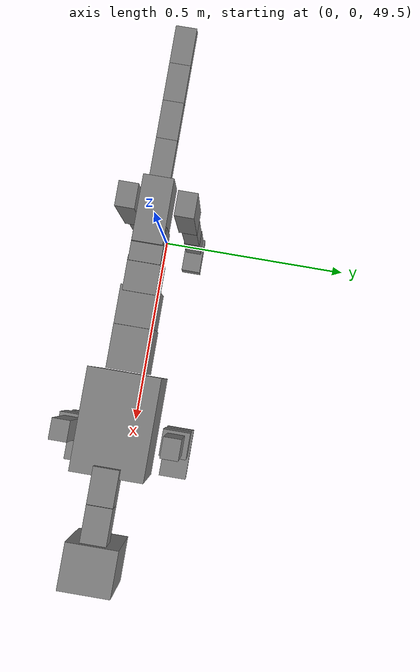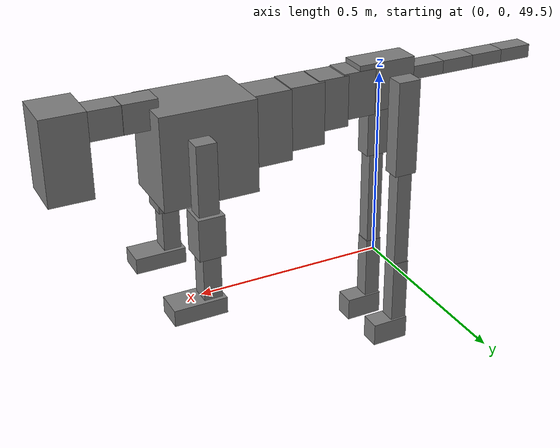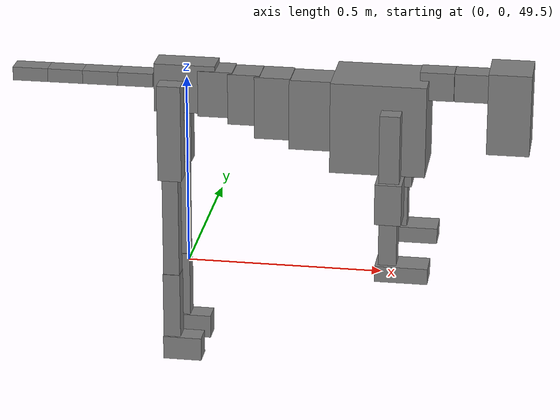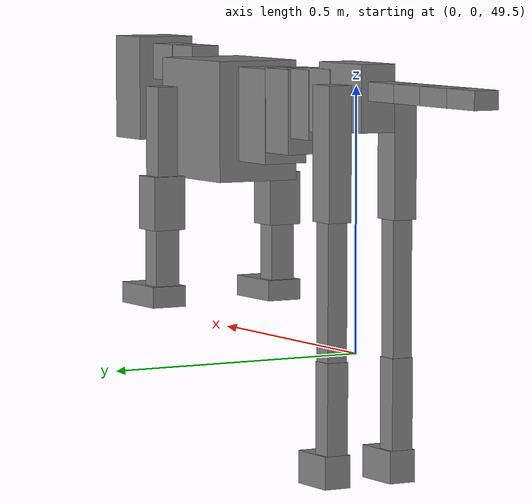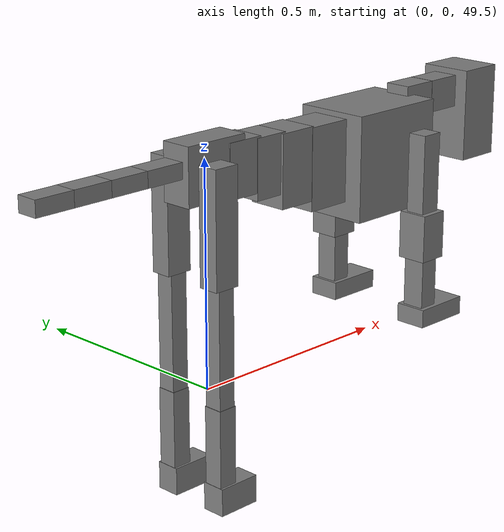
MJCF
<mujoco model="dog">

    <default>
        <joint armature="0.02" stiffness="1" damping="0.2" limited="true"/>
        <geom condim="3" friction="1 0.05 0.05" margin="0.01"/>
        <motor ctrllimited="true" ctrlrange="-1.0 1.0" forcelimited="true" gear="50"/>
    </default>

    <compiler inertiafromgeom="true" angle="radian"/>

    <option timestep="0.016" iterations="50" tolerance="1e-10" solver="Newton" jacobian="dense" cone="pyramidal"/>

    <size nconmax="20000" njmax="60000" nstack="5000000"/>
    <visual>
        <map force="0.1" zfar="30"/>
        <rgba haze="0.15 0.25 0.35 1"/>
        <quality shadowsize="2048"/>
        <global offwidth="800" offheight="800"/>
    </visual>

    <asset>
        <texture type="skybox" builtin="gradient" rgb1="0.3 0.5 0.7" rgb2="0 0 0" width="512" height="512"/>
        <texture name="texplane" type="2d" builtin="checker" rgb1=".2 .3 .4" rgb2=".1 0.15 0.2" width="512" height="512"
                 mark="cross" markrgb=".8 .8 .8"/>
        <texture name="texgeom" type="cube" builtin="flat" mark="cross" width="127" height="1278" rgb1="0.8 0.6 0.4"
                 rgb2="0.8 0.6 0.4" markrgb="1 1 1" random="0.01"/>

        <material name="matplane" reflectance="0.3" texture="texplane" texrepeat="1 1" texuniform="true"/>
        <material name="matgeom" texture="texgeom" texuniform="true" rgba="0.8 0.6 .4 1"/>
    </asset>

    <worldbody>
        <geom name="floor" pos="0 0 0" size="0 0 .25" type="plane" material="matplane" condim="3"/>

        <light directional="false" diffuse=".2 .2 .2" specular="0 0 0" pos="0 0 5" dir="0 0 -1" castshadow="false"/>
        <light mode="targetbodycom" target="torso" directional="false" diffuse=".8 .8 .8" specular="0.3 0.3 0.3"
               pos="0 0 4.0" dir="0 0 -1"/>

        <body name="root" pos="0 0 50">
            <freejoint name="root_1"/>
            <geom type="box" pos="0 0 -0.02" size="0.0774  0.0358  0.063" density="2030"/>

            <body name="spine1" pos="0.054 0 0">
                <joint name="spine1_y" axis="0 1 0" range="0 0.7" limited="true"/>
                <geom type="box" pos="0.02375 0 -0.03" size="0.04375  0.0375  0.05985" density="2030"/>

                <body name="spine2" pos="0.0612 0 0">
                    <joint name="spine2_y" axis="0 1 0" range="-0.15 0.15" limited="true"/>
                    <geom type="box" pos="0.03555  0  -0.04" size="0.04055  0.039  0.06615" density="2030"/>

                    <body name="spine3" pos="0.0730 0 0">
                        <joint name="spine3_y" axis="0 1 0" range="-0.15 0.15" limited="true"/>
                        <geom type="box" pos="0.03555  0  -0.057" size="0.04555  0.0445  0.081" density="2030"/>

                        <body name="spine4" pos="0.0780 0 0">
                            <joint name="spine4_y" axis="0 1 0" range="-0.15 0.15" limited="true"/>
                            <geom type="box" pos="0.05265  0  -0.07" size="0.05265  0.045  0.09135" density="2030"/>

                            <body name="torso" pos="0.1082 0 0">
                                <joint name="torso_y" axis="0 1 0" range="-0.15 0.15" limited="true"/>
                                <geom type="box" pos="0.11925  0  -0.085" size="0.11925  0.085  0.11745"
                                      density="2030"/>

                                <body name="neck1" pos="0.2160  0   0.0180">
                                    <joint name="neck1_y" axis="0 1 0" range="-1.2  -1" limited="true"/>
                                    <geom type="box" pos="0.0423  0  0" size="0.0423  0.03  0.036" density="2325"/>

                                    <body name="neck2" pos="0.0853  0  0">
                                        <joint name="neck2_y" axis="0 1 0" range="0.1  0" limited="true"/>
                                        <geom type="box" pos="0.0423  0  0" size="0.0423  0.03  0.036" density="2325"/>

                                        <body name="head" pos="0.0853  0  0">
                                            <joint name="head_y" axis="0 1 0" range="-0.3  -0.2" limited="true"/>
                                            <geom type="box" pos="0.0531  0  -0.055" size="0.0531  0.06  0.1044"
                                                  density="4030"/>

                                        </body>
                                    </body>
                                </body>

                                <body name="front_shoulder" pos="0.156  0   -0.0480">
                                    <joint name="front_shoulder_y" axis="0 1 0" range="-1 1.5" limited="true"/>
                                    <geom type="box" pos="0 0.13 -0.0746" size="0.0253  0.0216  0.1013" density="1158"/>
                                    <geom type="box" pos="0 -0.13 -0.0746" size="0.0253  0.0216  0.1013"
                                          density="1158"/>

                                    <body name="front_elbow" pos="0  0  -0.1492">
                                        <joint name="front_elbow_y" axis="0 1 0" range="-2 0" limited="true"/>
                                        <geom type="box" pos="0 0.13 -0.0528" size="0.0332  0.0340  0.0528"
                                              density="1081"/>
                                        <geom type="box" pos="0 -0.13 -0.0528" size="0.0332  0.0340  0.0528"
                                              density="1081"/>

                                        <body name="front_wrist" pos="0  0  -0.1056">
                                            <joint name="front_wrist_y" axis="0 1 0" range="-0.2 0" limited="true"/>
                                            <geom type="box" pos="0 0.13 -0.0631" size="0.0226  0.0252  0.0763"
                                                  density="1664"/>
                                            <geom type="box" pos="0 -0.13 -0.0631" size="0.0226  0.0252  0.0763"
                                                  density="1664"/>

                                            <body name="front_finger_end" pos="0  0  -0.1262">
                                                <joint name="front_finger_y" axis="0 1 0" range="-0.4 1"
                                                       limited="true"/>
                                                <geom type="box" pos="0.0360  0.13  -0.0057"
                                                      size="0.0661  0.0360  0.0207" density="1515"/>
                                                <geom type="box" pos="0.0360  -0.13  -0.0057"
                                                      size="0.0661  0.0360  0.0207" density="1515"/>

                                            </body>

                                        </body>
                                    </body>
                                </body>

                            </body>
                        </body>
                    </body>
                </body>
            </body>

            <body name="back_hip" pos="-0.03 0 -0.018">
                <joint name="back_hip_y" axis="0 1 0" range="-1.5 0.3" limited="true"/>
                <geom type="box" pos="0 0.07 -0.1035" size="0.0301  0.0236  0.1263" density="1154"/>
                <geom type="box" pos="0 -0.07 -0.1035" size="0.0301  0.0236  0.1263" density="1154"/>

                <body name="back_knee" pos="0  0  -0.2070">
                    <joint name="back_knee_y" axis="0 1 0" range="0 2.8" limited="true"/>
                    <geom type="box" pos="0 0.07 -0.1464" size="0.0205  0.0203  0.1620" density="1227"/>
                    <geom type="box" pos="0 -0.07 -0.1464" size="0.0205  0.0203  0.1620" density="1227"/>

                    <body name="back_ankle" pos="0  0  -0.2928">
                        <joint name="back_ankle_y" axis="0 1 0" range="-2.2 0" limited="true"/>
                        <geom type="box" pos="0 0.07 -0.0885" size="0.0219  0.0219  0.0998" density="1284"/>
                        <geom type="box" pos="0 -0.07 -0.0885" size="0.0219  0.0219  0.0998" density="1284"/>

                        <body name="back_toe_end" pos="0  0  -0.1770">
                            <joint name="back_toe_y" axis="0 1 0" range="-0.4 1" limited="true"/>
                            <geom type="box" pos="0.0270  0.07  -0.0159" size="0.0495  0.0270  0.0309" density="1515"/>
                            <geom type="box" pos="0.0270  -0.07  -0.0159" size="0.0495  0.0270  0.0309" density="1515"/>

                        </body>
                    </body>
                </body>
            </body>

            <body name="tail1" pos="-0.074 0 -0.006">
                <joint name="tail1_y" axis="0 1 0" range="-0.2 0.2" limited="true"/>
                <geom type="box" pos="-0.0536  0  0" size="0.045  0.025  0.0175" density="1587"/>

                <body name="tail2" pos="-0.09 0 0">
                    <joint name="tail2_y" axis="0 1 0" range="-0.2 0.2" limited="true"/>
                    <geom type="box" pos="-0.0536  0  0" size="0.045  0.025  0.0175" density="1587"/>

                    <body name="tail3" pos="-0.09 0 0">
                        <joint name="tail3_y" axis="0 1 0" range="-0.2 0.2" limited="true"/>
                        <geom type="box" pos="-0.0536  0  0" size="0.045  0.025  0.0175" density="1587"/>

                        <body name="tail4" pos="-0.09 0 0">
                            <joint name="tail4_y" axis="0 1 0" range="-0.2 0.2" limited="true"/>
                            <geom type="box" pos="-0.0536  0  0" size="0.045  0.025  0.0175" density="1587"/>

                        </body>
                    </body>
                </body>
            </body>
        </body>
    </worldbody>

    <actuator>
        <motor joint="spine1_y" forcerange="-150 150     "/>
        <motor joint="spine2_y" forcerange="-150 150     "/>
        <motor joint="spine3_y" forcerange="-150 150     "/>
        <motor joint="spine4_y" forcerange="-150 150     "/>
        <motor joint="torso_y" forcerange="-150 150     "/>
        <motor joint="neck1_y" forcerange="-100 100       "/>
        <motor joint="neck2_y" forcerange="-100 100       "/>
        <motor joint="head_y" forcerange="-150 150       "/>
        <motor joint="front_shoulder_y" forcerange="-121.04 122.93"/>
        <motor joint="front_elbow_y" forcerange="-162.38 184.77"/>
        <motor joint="front_wrist_y" forcerange="-137.36 63.94"/>
        <motor joint="front_finger_y" forcerange="-92.53 59.73"/>
        <motor joint="back_hip_y" forcerange="-205.18 309.66"/>
        <motor joint="back_knee_y" forcerange="-260.64 233.97"/>
        <motor joint="back_angle_y" forcerange="-106.17 143.72"/>
        <motor joint="back_toe_y" forcerange="-103.47 32.35"/>
        <motor joint="tail1_y" forcerange="-50 50     "/>
        <motor joint="tail2_y" forcerange="-50 50     "/>
        <motor joint="tail3_y" forcerange="-50 50     "/>
        <motor joint="tail4_y" forcerange="-50 50     "/>
    </actuator>
</mujoco>
